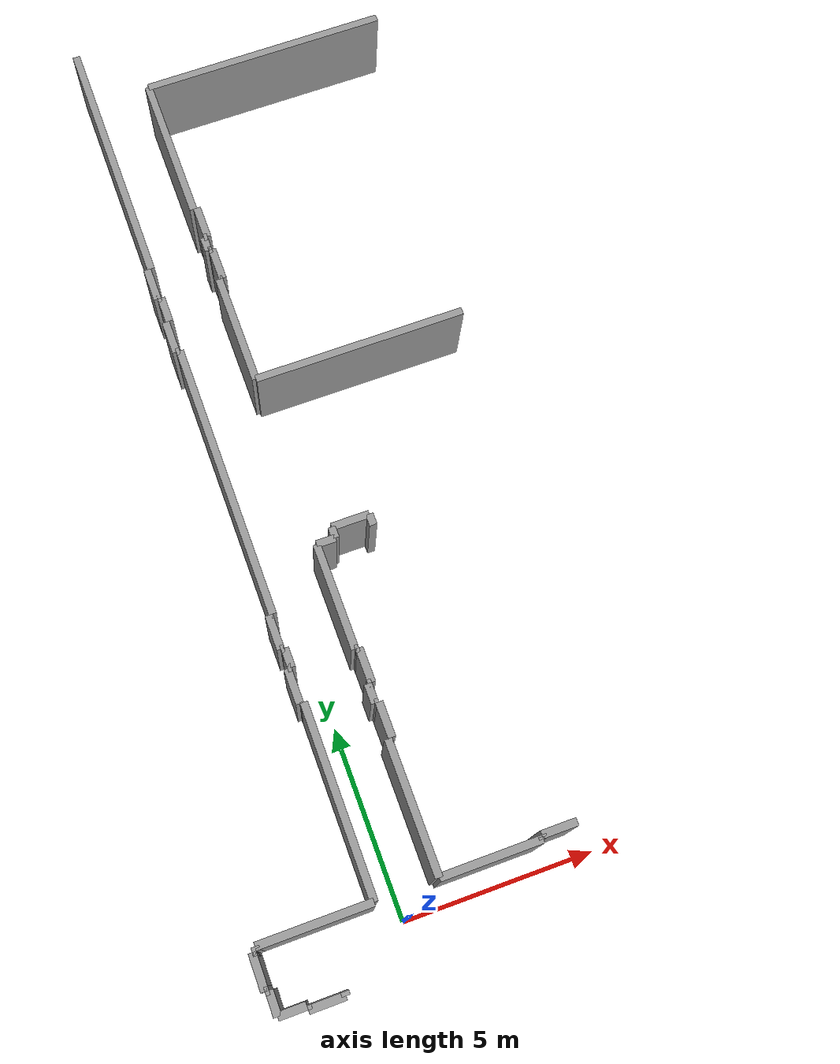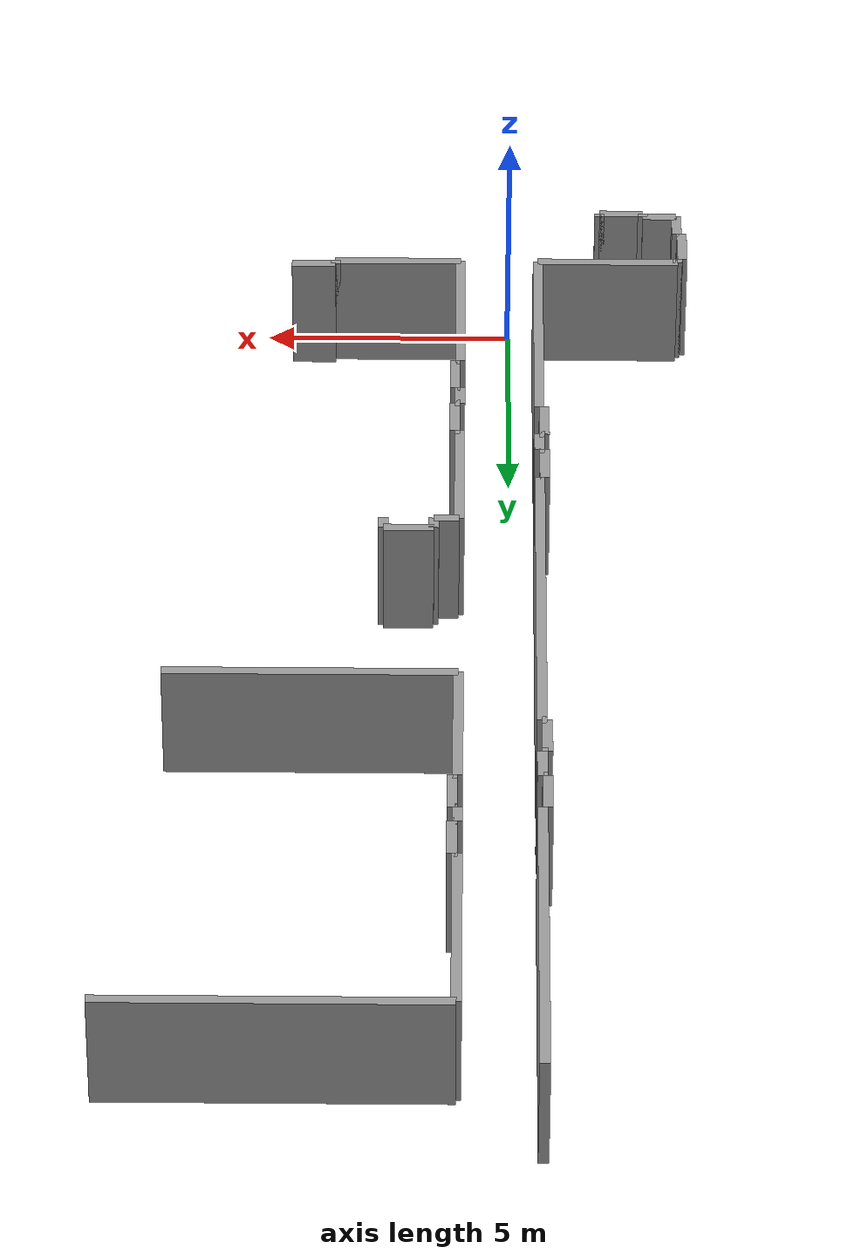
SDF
<sdf version="1.4">
 <model name="Levine">
  <link name="Wall_0">
   <collision name="Wall_0_Collision">
    <geometry><box><size>4.9 0.2 2.5</size></box></geometry>
    <pose>0 0 1.25 0 0 0</pose>
   </collision>
   <visual name="Wall_0_Visual">
    <pose>0 0 1.25 0 0 0</pose>
    <geometry><box><size>4.9 0.2 2.5</size></box></geometry>
    <material>
     <script><uri>file://media/materials/scripts/gazebo.material</uri><name>Gazebo/Grey</name></script>
    </material>
   </visual>
   <velocity_decay><linear>0</linear><angular>0</angular></velocity_decay>
   <pose>-0.6 3.05 0 0 0 1.57079632679</pose>
  </link>
  <link name="Wall_1">
   <collision name="Wall_1_Collision">
    <geometry><box><size>0.1 0.2 2.5</size></box></geometry>
    <pose>0 0 1.25 0 0 0</pose>
   </collision>
   <visual name="Wall_1_Visual">
    <pose>0 0 1.25 0 0 0</pose>
    <geometry><box><size>0.1 0.2 2.5</size></box></geometry>
    <material>
     <script><uri>file://media/materials/scripts/gazebo.material</uri><name>Gazebo/Grey</name></script>
    </material>
   </visual>
   <velocity_decay><linear>0</linear><angular>0</angular></velocity_decay>
   <pose>-0.65 5.5 0 0 0 3.14159265359</pose>
  </link>
  <link name="Wall_2">
   <collision name="Wall_2_Collision">
    <geometry><box><size>0.9 0.2 2.5</size></box></geometry>
    <pose>0 0 1.25 0 0 0</pose>
   </collision>
   <visual name="Wall_2_Visual">
    <pose>0 0 1.25 0 0 0</pose>
    <geometry><box><size>0.9 0.2 2.5</size></box></geometry>
    <material>
     <script><uri>file://media/materials/scripts/gazebo.material</uri><name>Gazebo/Grey</name></script>
    </material>
   </visual>
   <velocity_decay><linear>0</linear><angular>0</angular></velocity_decay>
   <pose>-0.7 5.95 0 0 0 1.57079632679</pose>
  </link>
  <link name="Wall_3">
   <collision name="Wall_3_Collision">
    <geometry><box><size>0.1 0.2 2.5</size></box></geometry>
    <pose>0 0 1.25 0 0 0</pose>
   </collision>
   <visual name="Wall_3_Visual">
    <pose>0 0 1.25 0 0 0</pose>
    <geometry><box><size>0.1 0.2 2.5</size></box></geometry>
    <material>
     <script><uri>file://media/materials/scripts/gazebo.material</uri><name>Gazebo/Grey</name></script>
    </material>
   </visual>
   <velocity_decay><linear>0</linear><angular>0</angular></velocity_decay>
   <pose>-0.65 6.4 0 0 0 0.0</pose>
  </link>
  <link name="Wall_4">
   <collision name="Wall_4_Collision">
    <geometry><box><size>0.5 0.2 2.5</size></box></geometry>
    <pose>0 0 1.25 0 0 0</pose>
   </collision>
   <visual name="Wall_4_Visual">
    <pose>0 0 1.25 0 0 0</pose>
    <geometry><box><size>0.5 0.2 2.5</size></box></geometry>
    <material>
     <script><uri>file://media/materials/scripts/gazebo.material</uri><name>Gazebo/Grey</name></script>
    </material>
   </visual>
   <velocity_decay><linear>0</linear><angular>0</angular></velocity_decay>
   <pose>-0.6 6.65 0 0 0 1.57079632679</pose>
  </link>
  <link name="Wall_5">
   <collision name="Wall_5_Collision">
    <geometry><box><size>0.1 0.2 2.5</size></box></geometry>
    <pose>0 0 1.25 0 0 0</pose>
   </collision>
   <visual name="Wall_5_Visual">
    <pose>0 0 1.25 0 0 0</pose>
    <geometry><box><size>0.1 0.2 2.5</size></box></geometry>
    <material>
     <script><uri>file://media/materials/scripts/gazebo.material</uri><name>Gazebo/Grey</name></script>
    </material>
   </visual>
   <velocity_decay><linear>0</linear><angular>0</angular></velocity_decay>
   <pose>-0.65 6.9 0 0 0 3.14159265359</pose>
  </link>
  <link name="Wall_6">
   <collision name="Wall_6_Collision">
    <geometry><box><size>0.9 0.2 2.5</size></box></geometry>
    <pose>0 0 1.25 0 0 0</pose>
   </collision>
   <visual name="Wall_6_Visual">
    <pose>0 0 1.25 0 0 0</pose>
    <geometry><box><size>0.9 0.2 2.5</size></box></geometry>
    <material>
     <script><uri>file://media/materials/scripts/gazebo.material</uri><name>Gazebo/Grey</name></script>
    </material>
   </visual>
   <velocity_decay><linear>0</linear><angular>0</angular></velocity_decay>
   <pose>-0.7 7.35 0 0 0 1.57079632679</pose>
  </link>
  <link name="Wall_7">
   <collision name="Wall_7_Collision">
    <geometry><box><size>0.1 0.2 2.5</size></box></geometry>
    <pose>0 0 1.25 0 0 0</pose>
   </collision>
   <visual name="Wall_7_Visual">
    <pose>0 0 1.25 0 0 0</pose>
    <geometry><box><size>0.1 0.2 2.5</size></box></geometry>
    <material>
     <script><uri>file://media/materials/scripts/gazebo.material</uri><name>Gazebo/Grey</name></script>
    </material>
   </visual>
   <velocity_decay><linear>0</linear><angular>0</angular></velocity_decay>
   <pose>-0.65 7.8 0 0 0 0.0</pose>
  </link>
  <link name="Wall_8">
   <collision name="Wall_8_Collision">
    <geometry><box><size>7.4 0.2 2.5</size></box></geometry>
    <pose>0 0 1.25 0 0 0</pose>
   </collision>
   <visual name="Wall_8_Visual">
    <pose>0 0 1.25 0 0 0</pose>
    <geometry><box><size>7.4 0.2 2.5</size></box></geometry>
    <material>
     <script><uri>file://media/materials/scripts/gazebo.material</uri><name>Gazebo/Grey</name></script>
    </material>
   </visual>
   <velocity_decay><linear>0</linear><angular>0</angular></velocity_decay>
   <pose>-0.6 11.5 0 0 0 1.57079632679</pose>
  </link>
  <link name="Wall_9">
   <collision name="Wall_9_Collision">
    <geometry><box><size>0.1 0.2 2.5</size></box></geometry>
    <pose>0 0 1.25 0 0 0</pose>
   </collision>
   <visual name="Wall_9_Visual">
    <pose>0 0 1.25 0 0 0</pose>
    <geometry><box><size>0.1 0.2 2.5</size></box></geometry>
    <material>
     <script><uri>file://media/materials/scripts/gazebo.material</uri><name>Gazebo/Grey</name></script>
    </material>
   </visual>
   <velocity_decay><linear>0</linear><angular>0</angular></velocity_decay>
   <pose>-0.65 15.2 0 0 0 3.14159265359</pose>
  </link>
  <link name="Wall_10">
   <collision name="Wall_10_Collision">
    <geometry><box><size>0.9 0.2 2.5</size></box></geometry>
    <pose>0 0 1.25 0 0 0</pose>
   </collision>
   <visual name="Wall_10_Visual">
    <pose>0 0 1.25 0 0 0</pose>
    <geometry><box><size>0.9 0.2 2.5</size></box></geometry>
    <material>
     <script><uri>file://media/materials/scripts/gazebo.material</uri><name>Gazebo/Grey</name></script>
    </material>
   </visual>
   <velocity_decay><linear>0</linear><angular>0</angular></velocity_decay>
   <pose>-0.7 15.65 0 0 0 1.57079632679</pose>
  </link>
  <link name="Wall_11">
   <collision name="Wall_11_Collision">
    <geometry><box><size>0.1 0.2 2.5</size></box></geometry>
    <pose>0 0 1.25 0 0 0</pose>
   </collision>
   <visual name="Wall_11_Visual">
    <pose>0 0 1.25 0 0 0</pose>
    <geometry><box><size>0.1 0.2 2.5</size></box></geometry>
    <material>
     <script><uri>file://media/materials/scripts/gazebo.material</uri><name>Gazebo/Grey</name></script>
    </material>
   </visual>
   <velocity_decay><linear>0</linear><angular>0</angular></velocity_decay>
   <pose>-0.65 16.1 0 0 0 0.0</pose>
  </link>
  <link name="Wall_12">
   <collision name="Wall_12_Collision">
    <geometry><box><size>0.7 0.2 2.5</size></box></geometry>
    <pose>0 0 1.25 0 0 0</pose>
   </collision>
   <visual name="Wall_12_Visual">
    <pose>0 0 1.25 0 0 0</pose>
    <geometry><box><size>0.7 0.2 2.5</size></box></geometry>
    <material>
     <script><uri>file://media/materials/scripts/gazebo.material</uri><name>Gazebo/Grey</name></script>
    </material>
   </visual>
   <velocity_decay><linear>0</linear><angular>0</angular></velocity_decay>
   <pose>-0.6 16.45 0 0 0 1.57079632679</pose>
  </link>
  <link name="Wall_13">
   <collision name="Wall_13_Collision">
    <geometry><box><size>0.1 0.2 2.5</size></box></geometry>
    <pose>0 0 1.25 0 0 0</pose>
   </collision>
   <visual name="Wall_13_Visual">
    <pose>0 0 1.25 0 0 0</pose>
    <geometry><box><size>0.1 0.2 2.5</size></box></geometry>
    <material>
     <script><uri>file://media/materials/scripts/gazebo.material</uri><name>Gazebo/Grey</name></script>
    </material>
   </visual>
   <velocity_decay><linear>0</linear><angular>0</angular></velocity_decay>
   <pose>-0.65 16.8 0 0 0 3.14159265359</pose>
  </link>
  <link name="Wall_14">
   <collision name="Wall_14_Collision">
    <geometry><box><size>0.9 0.2 2.5</size></box></geometry>
    <pose>0 0 1.25 0 0 0</pose>
   </collision>
   <visual name="Wall_14_Visual">
    <pose>0 0 1.25 0 0 0</pose>
    <geometry><box><size>0.9 0.2 2.5</size></box></geometry>
    <material>
     <script><uri>file://media/materials/scripts/gazebo.material</uri><name>Gazebo/Grey</name></script>
    </material>
   </visual>
   <velocity_decay><linear>0</linear><angular>0</angular></velocity_decay>
   <pose>-0.7 17.25 0 0 0 1.57079632679</pose>
  </link>
  <link name="Wall_15">
   <collision name="Wall_15_Collision">
    <geometry><box><size>0.1 0.2 2.5</size></box></geometry>
    <pose>0 0 1.25 0 0 0</pose>
   </collision>
   <visual name="Wall_15_Visual">
    <pose>0 0 1.25 0 0 0</pose>
    <geometry><box><size>0.1 0.2 2.5</size></box></geometry>
    <material>
     <script><uri>file://media/materials/scripts/gazebo.material</uri><name>Gazebo/Grey</name></script>
    </material>
   </visual>
   <velocity_decay><linear>0</linear><angular>0</angular></velocity_decay>
   <pose>-0.65 17.7 0 0 0 0.0</pose>
  </link>
  <link name="Wall_16">
   <collision name="Wall_16_Collision">
    <geometry><box><size>6.9 0.2 2.5</size></box></geometry>
    <pose>0 0 1.25 0 0 0</pose>
   </collision>
   <visual name="Wall_16_Visual">
    <pose>0 0 1.25 0 0 0</pose>
    <geometry><box><size>6.9 0.2 2.5</size></box></geometry>
    <material>
     <script><uri>file://media/materials/scripts/gazebo.material</uri><name>Gazebo/Grey</name></script>
    </material>
   </visual>
   <velocity_decay><linear>0</linear><angular>0</angular></velocity_decay>
   <pose>-0.6 21.15 0 0 0 1.57079632679</pose>
  </link>
  <link name="Wall_37">
   <collision name="Wall_37_Collision">
    <geometry><box><size>2.9 0.2 2.5</size></box></geometry>
    <pose>0 0 1.25 0 0 0</pose>
   </collision>
   <visual name="Wall_37_Visual">
    <pose>0 0 1.25 0 0 0</pose>
    <geometry><box><size>2.9 0.2 2.5</size></box></geometry>
    <material>
     <script><uri>file://media/materials/scripts/gazebo.material</uri><name>Gazebo/Grey</name></script>
    </material>
   </visual>
   <velocity_decay><linear>0</linear><angular>0</angular></velocity_decay>
   <pose>-2.05 0.6 0 0 0 3.14159265359</pose>
  </link>
  <link name="Wall_38">
   <collision name="Wall_38_Collision">
    <geometry><box><size>0.1 0.2 2.5</size></box></geometry>
    <pose>0 0 1.25 0 0 0</pose>
   </collision>
   <visual name="Wall_38_Visual">
    <pose>0 0 1.25 0 0 0</pose>
    <geometry><box><size>0.1 0.2 2.5</size></box></geometry>
    <material>
     <script><uri>file://media/materials/scripts/gazebo.material</uri><name>Gazebo/Grey</name></script>
    </material>
   </visual>
   <velocity_decay><linear>0</linear><angular>0</angular></velocity_decay>
   <pose>-3.5 0.55 0 0 0 -1.57079632679</pose>
  </link>
  <link name="Wall_39">
   <collision name="Wall_39_Collision">
    <geometry><box><size>0.1 0.2 2.5</size></box></geometry>
    <pose>0 0 1.25 0 0 0</pose>
   </collision>
   <visual name="Wall_39_Visual">
    <pose>0 0 1.25 0 0 0</pose>
    <geometry><box><size>0.1 0.2 2.5</size></box></geometry>
    <material>
     <script><uri>file://media/materials/scripts/gazebo.material</uri><name>Gazebo/Grey</name></script>
    </material>
   </visual>
   <velocity_decay><linear>0</linear><angular>0</angular></velocity_decay>
   <pose>-3.55 0.5 0 0 0 3.14159265359</pose>
  </link>
  <link name="Wall_40">
   <collision name="Wall_40_Collision">
    <geometry><box><size>0.9 0.2 2.5</size></box></geometry>
    <pose>0 0 1.25 0 0 0</pose>
   </collision>
   <visual name="Wall_40_Visual">
    <pose>0 0 1.25 0 0 0</pose>
    <geometry><box><size>0.9 0.2 2.5</size></box></geometry>
    <material>
     <script><uri>file://media/materials/scripts/gazebo.material</uri><name>Gazebo/Grey</name></script>
    </material>
   </visual>
   <velocity_decay><linear>0</linear><angular>0</angular></velocity_decay>
   <pose>-3.6 0.05 0 0 0 -1.57079632679</pose>
  </link>
  <link name="Wall_41">
   <collision name="Wall_41_Collision">
    <geometry><box><size>0.1 0.2 2.5</size></box></geometry>
    <pose>0 0 1.25 0 0 0</pose>
   </collision>
   <visual name="Wall_41_Visual">
    <pose>0 0 1.25 0 0 0</pose>
    <geometry><box><size>0.1 0.2 2.5</size></box></geometry>
    <material>
     <script><uri>file://media/materials/scripts/gazebo.material</uri><name>Gazebo/Grey</name></script>
    </material>
   </visual>
   <velocity_decay><linear>0</linear><angular>0</angular></velocity_decay>
   <pose>-3.55 -0.4 0 0 0 0.0</pose>
  </link>
  <link name="Wall_42">
   <collision name="Wall_42_Collision">
    <geometry><box><size>0.6 0.2 2.5</size></box></geometry>
    <pose>0 0 1.25 0 0 0</pose>
   </collision>
   <visual name="Wall_42_Visual">
    <pose>0 0 1.25 0 0 0</pose>
    <geometry><box><size>0.6 0.2 2.5</size></box></geometry>
    <material>
     <script><uri>file://media/materials/scripts/gazebo.material</uri><name>Gazebo/Grey</name></script>
    </material>
   </visual>
   <velocity_decay><linear>0</linear><angular>0</angular></velocity_decay>
   <pose>-3.5 -0.7 0 0 0 -1.57079632679</pose>
  </link>
  <link name="Wall_43">
   <collision name="Wall_43_Collision">
    <geometry><box><size>0.7 0.2 2.5</size></box></geometry>
    <pose>0 0 1.25 0 0 0</pose>
   </collision>
   <visual name="Wall_43_Visual">
    <pose>0 0 1.25 0 0 0</pose>
    <geometry><box><size>0.7 0.2 2.5</size></box></geometry>
    <material>
     <script><uri>file://media/materials/scripts/gazebo.material</uri><name>Gazebo/Grey</name></script>
    </material>
   </visual>
   <velocity_decay><linear>0</linear><angular>0</angular></velocity_decay>
   <pose>-3.15 -1.0 0 0 0 0.0</pose>
  </link>
  <link name="Wall_44">
   <collision name="Wall_44_Collision">
    <geometry><box><size>0.1 0.2 2.5</size></box></geometry>
    <pose>0 0 1.25 0 0 0</pose>
   </collision>
   <visual name="Wall_44_Visual">
    <pose>0 0 1.25 0 0 0</pose>
    <geometry><box><size>0.1 0.2 2.5</size></box></geometry>
    <material>
     <script><uri>file://media/materials/scripts/gazebo.material</uri><name>Gazebo/Grey</name></script>
    </material>
   </visual>
   <velocity_decay><linear>0</linear><angular>0</angular></velocity_decay>
   <pose>-2.8 -1.05 0 0 0 -1.57079632679</pose>
  </link>
  <link name="Wall_45">
   <collision name="Wall_45_Collision">
    <geometry><box><size>0.9 0.2 2.5</size></box></geometry>
    <pose>0 0 1.25 0 0 0</pose>
   </collision>
   <visual name="Wall_45_Visual">
    <pose>0 0 1.25 0 0 0</pose>
    <geometry><box><size>0.9 0.2 2.5</size></box></geometry>
    <material>
     <script><uri>file://media/materials/scripts/gazebo.material</uri><name>Gazebo/Grey</name></script>
    </material>
   </visual>
   <velocity_decay><linear>0</linear><angular>0</angular></velocity_decay>
   <pose>-2.35 -1.1 0 0 0 0.0</pose>
  </link>
  <link name="Wall_46">
   <collision name="Wall_46_Collision">
    <geometry><box><size>0.1 0.2 2.5</size></box></geometry>
    <pose>0 0 1.25 0 0 0</pose>
   </collision>
   <visual name="Wall_46_Visual">
    <pose>0 0 1.25 0 0 0</pose>
    <geometry><box><size>0.1 0.2 2.5</size></box></geometry>
    <material>
     <script><uri>file://media/materials/scripts/gazebo.material</uri><name>Gazebo/Grey</name></script>
    </material>
   </visual>
   <velocity_decay><linear>0</linear><angular>0</angular></velocity_decay>
   <pose>-1.9 -1.05 0 0 0 1.57079632679</pose>
  </link>
  <link name="Wall_56">
   <collision name="Wall_56_Collision">
    <geometry><box><size>3.4 0.2 2.5</size></box></geometry>
    <pose>0 0 1.25 0 0 0</pose>
   </collision>
   <visual name="Wall_56_Visual">
    <pose>0 0 1.25 0 0 0</pose>
    <geometry><box><size>3.4 0.2 2.5</size></box></geometry>
    <material>
     <script><uri>file://media/materials/scripts/gazebo.material</uri><name>Gazebo/Grey</name></script>
    </material>
   </visual>
   <velocity_decay><linear>0</linear><angular>0</angular></velocity_decay>
   <pose>1.0 2.3 0 0 0 1.57079632679</pose>
  </link>
  <link name="Wall_57">
   <collision name="Wall_57_Collision">
    <geometry><box><size>0.1 0.2 2.5</size></box></geometry>
    <pose>0 0 1.25 0 0 0</pose>
   </collision>
   <visual name="Wall_57_Visual">
    <pose>0 0 1.25 0 0 0</pose>
    <geometry><box><size>0.1 0.2 2.5</size></box></geometry>
    <material>
     <script><uri>file://media/materials/scripts/gazebo.material</uri><name>Gazebo/Grey</name></script>
    </material>
   </visual>
   <velocity_decay><linear>0</linear><angular>0</angular></velocity_decay>
   <pose>1.05 4.0 0 0 0 0.0</pose>
  </link>
  <link name="Wall_58">
   <collision name="Wall_58_Collision">
    <geometry><box><size>0.9 0.2 2.5</size></box></geometry>
    <pose>0 0 1.25 0 0 0</pose>
   </collision>
   <visual name="Wall_58_Visual">
    <pose>0 0 1.25 0 0 0</pose>
    <geometry><box><size>0.9 0.2 2.5</size></box></geometry>
    <material>
     <script><uri>file://media/materials/scripts/gazebo.material</uri><name>Gazebo/Grey</name></script>
    </material>
   </visual>
   <velocity_decay><linear>0</linear><angular>0</angular></velocity_decay>
   <pose>1.1 4.45 0 0 0 1.57079632679</pose>
  </link>
  <link name="Wall_59">
   <collision name="Wall_59_Collision">
    <geometry><box><size>0.1 0.2 2.5</size></box></geometry>
    <pose>0 0 1.25 0 0 0</pose>
   </collision>
   <visual name="Wall_59_Visual">
    <pose>0 0 1.25 0 0 0</pose>
    <geometry><box><size>0.1 0.2 2.5</size></box></geometry>
    <material>
     <script><uri>file://media/materials/scripts/gazebo.material</uri><name>Gazebo/Grey</name></script>
    </material>
   </visual>
   <velocity_decay><linear>0</linear><angular>0</angular></velocity_decay>
   <pose>1.05 4.9 0 0 0 3.14159265359</pose>
  </link>
  <link name="Wall_60">
   <collision name="Wall_60_Collision">
    <geometry><box><size>0.5 0.2 2.5</size></box></geometry>
    <pose>0 0 1.25 0 0 0</pose>
   </collision>
   <visual name="Wall_60_Visual">
    <pose>0 0 1.25 0 0 0</pose>
    <geometry><box><size>0.5 0.2 2.5</size></box></geometry>
    <material>
     <script><uri>file://media/materials/scripts/gazebo.material</uri><name>Gazebo/Grey</name></script>
    </material>
   </visual>
   <velocity_decay><linear>0</linear><angular>0</angular></velocity_decay>
   <pose>1.0 5.15 0 0 0 1.57079632679</pose>
  </link>
  <link name="Wall_61">
   <collision name="Wall_61_Collision">
    <geometry><box><size>0.1 0.2 2.5</size></box></geometry>
    <pose>0 0 1.25 0 0 0</pose>
   </collision>
   <visual name="Wall_61_Visual">
    <pose>0 0 1.25 0 0 0</pose>
    <geometry><box><size>0.1 0.2 2.5</size></box></geometry>
    <material>
     <script><uri>file://media/materials/scripts/gazebo.material</uri><name>Gazebo/Grey</name></script>
    </material>
   </visual>
   <velocity_decay><linear>0</linear><angular>0</angular></velocity_decay>
   <pose>1.05 5.4 0 0 0 0.0</pose>
  </link>
  <link name="Wall_62">
   <collision name="Wall_62_Collision">
    <geometry><box><size>0.9 0.2 2.5</size></box></geometry>
    <pose>0 0 1.25 0 0 0</pose>
   </collision>
   <visual name="Wall_62_Visual">
    <pose>0 0 1.25 0 0 0</pose>
    <geometry><box><size>0.9 0.2 2.5</size></box></geometry>
    <material>
     <script><uri>file://media/materials/scripts/gazebo.material</uri><name>Gazebo/Grey</name></script>
    </material>
   </visual>
   <velocity_decay><linear>0</linear><angular>0</angular></velocity_decay>
   <pose>1.1 5.85 0 0 0 1.57079632679</pose>
  </link>
  <link name="Wall_63">
   <collision name="Wall_63_Collision">
    <geometry><box><size>0.1 0.2 2.5</size></box></geometry>
    <pose>0 0 1.25 0 0 0</pose>
   </collision>
   <visual name="Wall_63_Visual">
    <pose>0 0 1.25 0 0 0</pose>
    <geometry><box><size>0.1 0.2 2.5</size></box></geometry>
    <material>
     <script><uri>file://media/materials/scripts/gazebo.material</uri><name>Gazebo/Grey</name></script>
    </material>
   </visual>
   <velocity_decay><linear>0</linear><angular>0</angular></velocity_decay>
   <pose>1.05 6.3 0 0 0 3.14159265359</pose>
  </link>
  <link name="Wall_64">
   <collision name="Wall_64_Collision">
    <geometry><box><size>2.8 0.2 2.5</size></box></geometry>
    <pose>0 0 1.25 0 0 0</pose>
   </collision>
   <visual name="Wall_64_Visual">
    <pose>0 0 1.25 0 0 0</pose>
    <geometry><box><size>2.8 0.2 2.5</size></box></geometry>
    <material>
     <script><uri>file://media/materials/scripts/gazebo.material</uri><name>Gazebo/Grey</name></script>
    </material>
   </visual>
   <velocity_decay><linear>0</linear><angular>0</angular></velocity_decay>
   <pose>1.0 7.7 0 0 0 1.57079632679</pose>
  </link>
  <link name="Wall_65">
   <collision name="Wall_65_Collision">
    <geometry><box><size>0.5 0.2 2.5</size></box></geometry>
    <pose>0 0 1.25 0 0 0</pose>
   </collision>
   <visual name="Wall_65_Visual">
    <pose>0 0 1.25 0 0 0</pose>
    <geometry><box><size>0.5 0.2 2.5</size></box></geometry>
    <material>
     <script><uri>file://media/materials/scripts/gazebo.material</uri><name>Gazebo/Grey</name></script>
    </material>
   </visual>
   <velocity_decay><linear>0</linear><angular>0</angular></velocity_decay>
   <pose>1.25 9.1 0 0 0 0.0</pose>
  </link>
  <link name="Wall_66">
   <collision name="Wall_66_Collision">
    <geometry><box><size>0.3 0.2 2.5</size></box></geometry>
    <pose>0 0 1.25 0 0 0</pose>
   </collision>
   <visual name="Wall_66_Visual">
    <pose>0 0 1.25 0 0 0</pose>
    <geometry><box><size>0.3 0.2 2.5</size></box></geometry>
    <material>
     <script><uri>file://media/materials/scripts/gazebo.material</uri><name>Gazebo/Grey</name></script>
    </material>
   </visual>
   <velocity_decay><linear>0</linear><angular>0</angular></velocity_decay>
   <pose>1.5 9.25 0 0 0 1.57079632679</pose>
  </link>
  <link name="Wall_67">
   <collision name="Wall_67_Collision">
    <geometry><box><size>1.0 0.2 2.5</size></box></geometry>
    <pose>0 0 1.25 0 0 0</pose>
   </collision>
   <visual name="Wall_67_Visual">
    <pose>0 0 1.25 0 0 0</pose>
    <geometry><box><size>1.0 0.2 2.5</size></box></geometry>
    <material>
     <script><uri>file://media/materials/scripts/gazebo.material</uri><name>Gazebo/Grey</name></script>
    </material>
   </visual>
   <velocity_decay><linear>0</linear><angular>0</angular></velocity_decay>
   <pose>2.0 9.4 0 0 0 0.0</pose>
  </link>
  <link name="Wall_68">
   <collision name="Wall_68_Collision">
    <geometry><box><size>0.3 0.2 2.5</size></box></geometry>
    <pose>0 0 1.25 0 0 0</pose>
   </collision>
   <visual name="Wall_68_Visual">
    <pose>0 0 1.25 0 0 0</pose>
    <geometry><box><size>0.3 0.2 2.5</size></box></geometry>
    <material>
     <script><uri>file://media/materials/scripts/gazebo.material</uri><name>Gazebo/Grey</name></script>
    </material>
   </visual>
   <velocity_decay><linear>0</linear><angular>0</angular></velocity_decay>
   <pose>2.5 9.25 0 0 0 -1.57079632679</pose>
  </link>
  <link name="Wall_81">
   <collision name="Wall_81_Collision">
    <geometry><box><size>0.9 0.2 2.5</size></box></geometry>
    <pose>0 0 1.25 0 0 0</pose>
   </collision>
   <visual name="Wall_81_Visual">
    <pose>0 0 1.25 0 0 0</pose>
    <geometry><box><size>0.9 0.2 2.5</size></box></geometry>
    <material>
     <script><uri>file://media/materials/scripts/gazebo.material</uri><name>Gazebo/Grey</name></script>
    </material>
   </visual>
   <velocity_decay><linear>0</linear><angular>0</angular></velocity_decay>
   <pose>4.05 0.7 0 0 0 3.14159265359</pose>
  </link>
  <link name="Wall_82">
   <collision name="Wall_82_Collision">
    <geometry><box><size>0.1 0.2 2.5</size></box></geometry>
    <pose>0 0 1.25 0 0 0</pose>
   </collision>
   <visual name="Wall_82_Visual">
    <pose>0 0 1.25 0 0 0</pose>
    <geometry><box><size>0.1 0.2 2.5</size></box></geometry>
    <material>
     <script><uri>file://media/materials/scripts/gazebo.material</uri><name>Gazebo/Grey</name></script>
    </material>
   </visual>
   <velocity_decay><linear>0</linear><angular>0</angular></velocity_decay>
   <pose>3.6 0.65 0 0 0 -1.57079632679</pose>
  </link>
  <link name="Wall_83">
   <collision name="Wall_83_Collision">
    <geometry><box><size>2.6 0.2 2.5</size></box></geometry>
    <pose>0 0 1.25 0 0 0</pose>
   </collision>
   <visual name="Wall_83_Visual">
    <pose>0 0 1.25 0 0 0</pose>
    <geometry><box><size>2.6 0.2 2.5</size></box></geometry>
    <material>
     <script><uri>file://media/materials/scripts/gazebo.material</uri><name>Gazebo/Grey</name></script>
    </material>
   </visual>
   <velocity_decay><linear>0</linear><angular>0</angular></velocity_decay>
   <pose>2.3 0.6 0 0 0 3.14159265359</pose>
  </link>
  <link name="Wall_84">
   <collision name="Wall_84_Collision">
    <geometry><box><size>3.0 0.2 2.5</size></box></geometry>
    <pose>0 0 1.25 0 0 0</pose>
   </collision>
   <visual name="Wall_84_Visual">
    <pose>0 0 1.25 0 0 0</pose>
    <geometry><box><size>3.0 0.2 2.5</size></box></geometry>
    <material>
     <script><uri>file://media/materials/scripts/gazebo.material</uri><name>Gazebo/Grey</name></script>
    </material>
   </visual>
   <velocity_decay><linear>0</linear><angular>0</angular></velocity_decay>
   <pose>1.0 15.3 0 0 0 1.57079632679</pose>
  </link>
  <link name="Wall_85">
   <collision name="Wall_85_Collision">
    <geometry><box><size>0.1 0.2 2.5</size></box></geometry>
    <pose>0 0 1.25 0 0 0</pose>
   </collision>
   <visual name="Wall_85_Visual">
    <pose>0 0 1.25 0 0 0</pose>
    <geometry><box><size>0.1 0.2 2.5</size></box></geometry>
    <material>
     <script><uri>file://media/materials/scripts/gazebo.material</uri><name>Gazebo/Grey</name></script>
    </material>
   </visual>
   <velocity_decay><linear>0</linear><angular>0</angular></velocity_decay>
   <pose>1.05 16.8 0 0 0 0.0</pose>
  </link>
  <link name="Wall_86">
   <collision name="Wall_86_Collision">
    <geometry><box><size>0.9 0.2 2.5</size></box></geometry>
    <pose>0 0 1.25 0 0 0</pose>
   </collision>
   <visual name="Wall_86_Visual">
    <pose>0 0 1.25 0 0 0</pose>
    <geometry><box><size>0.9 0.2 2.5</size></box></geometry>
    <material>
     <script><uri>file://media/materials/scripts/gazebo.material</uri><name>Gazebo/Grey</name></script>
    </material>
   </visual>
   <velocity_decay><linear>0</linear><angular>0</angular></velocity_decay>
   <pose>1.1 17.25 0 0 0 1.57079632679</pose>
  </link>
  <link name="Wall_87">
   <collision name="Wall_87_Collision">
    <geometry><box><size>0.1 0.2 2.5</size></box></geometry>
    <pose>0 0 1.25 0 0 0</pose>
   </collision>
   <visual name="Wall_87_Visual">
    <pose>0 0 1.25 0 0 0</pose>
    <geometry><box><size>0.1 0.2 2.5</size></box></geometry>
    <material>
     <script><uri>file://media/materials/scripts/gazebo.material</uri><name>Gazebo/Grey</name></script>
    </material>
   </visual>
   <velocity_decay><linear>0</linear><angular>0</angular></velocity_decay>
   <pose>1.05 17.7 0 0 0 3.14159265359</pose>
  </link>
  <link name="Wall_88">
   <collision name="Wall_88_Collision">
    <geometry><box><size>0.4 0.2 2.5</size></box></geometry>
    <pose>0 0 1.25 0 0 0</pose>
   </collision>
   <visual name="Wall_88_Visual">
    <pose>0 0 1.25 0 0 0</pose>
    <geometry><box><size>0.4 0.2 2.5</size></box></geometry>
    <material>
     <script><uri>file://media/materials/scripts/gazebo.material</uri><name>Gazebo/Grey</name></script>
    </material>
   </visual>
   <velocity_decay><linear>0</linear><angular>0</angular></velocity_decay>
   <pose>1.0 17.9 0 0 0 1.57079632679</pose>
  </link>
  <link name="Wall_89">
   <collision name="Wall_89_Collision">
    <geometry><box><size>0.1 0.2 2.5</size></box></geometry>
    <pose>0 0 1.25 0 0 0</pose>
   </collision>
   <visual name="Wall_89_Visual">
    <pose>0 0 1.25 0 0 0</pose>
    <geometry><box><size>0.1 0.2 2.5</size></box></geometry>
    <material>
     <script><uri>file://media/materials/scripts/gazebo.material</uri><name>Gazebo/Grey</name></script>
    </material>
   </visual>
   <velocity_decay><linear>0</linear><angular>0</angular></velocity_decay>
   <pose>1.05 18.1 0 0 0 0.0</pose>
  </link>
  <link name="Wall_90">
   <collision name="Wall_90_Collision">
    <geometry><box><size>0.9 0.2 2.5</size></box></geometry>
    <pose>0 0 1.25 0 0 0</pose>
   </collision>
   <visual name="Wall_90_Visual">
    <pose>0 0 1.25 0 0 0</pose>
    <geometry><box><size>0.9 0.2 2.5</size></box></geometry>
    <material>
     <script><uri>file://media/materials/scripts/gazebo.material</uri><name>Gazebo/Grey</name></script>
    </material>
   </visual>
   <velocity_decay><linear>0</linear><angular>0</angular></velocity_decay>
   <pose>1.1 18.55 0 0 0 1.57079632679</pose>
  </link>
  <link name="Wall_91">
   <collision name="Wall_91_Collision">
    <geometry><box><size>0.1 0.2 2.5</size></box></geometry>
    <pose>0 0 1.25 0 0 0</pose>
   </collision>
   <visual name="Wall_91_Visual">
    <pose>0 0 1.25 0 0 0</pose>
    <geometry><box><size>0.1 0.2 2.5</size></box></geometry>
    <material>
     <script><uri>file://media/materials/scripts/gazebo.material</uri><name>Gazebo/Grey</name></script>
    </material>
   </visual>
   <velocity_decay><linear>0</linear><angular>0</angular></velocity_decay>
   <pose>1.05 19.0 0 0 0 3.14159265359</pose>
  </link>
  <link name="Wall_92">
   <collision name="Wall_92_Collision">
    <geometry><box><size>4.0 0.2 2.5</size></box></geometry>
    <pose>0 0 1.25 0 0 0</pose>
   </collision>
   <visual name="Wall_92_Visual">
    <pose>0 0 1.25 0 0 0</pose>
    <geometry><box><size>4.0 0.2 2.5</size></box></geometry>
    <material>
     <script><uri>file://media/materials/scripts/gazebo.material</uri><name>Gazebo/Grey</name></script>
    </material>
   </visual>
   <velocity_decay><linear>0</linear><angular>0</angular></velocity_decay>
   <pose>1.0 21.0 0 0 0 1.57079632679</pose>
  </link>
  <link name="Wall_93">
   <collision name="Wall_93_Collision">
    <geometry><box><size>6.7 0.2 2.5</size></box></geometry>
    <pose>0 0 1.25 0 0 0</pose>
   </collision>
   <visual name="Wall_93_Visual">
    <pose>0 0 1.25 0 0 0</pose>
    <geometry><box><size>6.7 0.2 2.5</size></box></geometry>
    <material>
     <script><uri>file://media/materials/scripts/gazebo.material</uri><name>Gazebo/Grey</name></script>
    </material>
   </visual>
   <velocity_decay><linear>0</linear><angular>0</angular></velocity_decay>
   <pose>4.35 23.0 0 0 0 0.0</pose>
  </link>
  <link name="Wall_105">
   <collision name="Wall_105_Collision">
    <geometry><box><size>5.7 0.2 2.5</size></box></geometry>
    <pose>0 0 1.25 0 0 0</pose>
   </collision>
   <visual name="Wall_105_Visual">
    <pose>0 0 1.25 0 0 0</pose>
    <geometry><box><size>5.7 0.2 2.5</size></box></geometry>
    <material>
     <script><uri>file://media/materials/scripts/gazebo.material</uri><name>Gazebo/Grey</name></script>
    </material>
   </visual>
   <velocity_decay><linear>0</linear><angular>0</angular></velocity_decay>
   <pose>3.85 13.8 0 0 0 3.14159265359</pose>
  </link>
  <static>1</static>
 </model>
</sdf>
